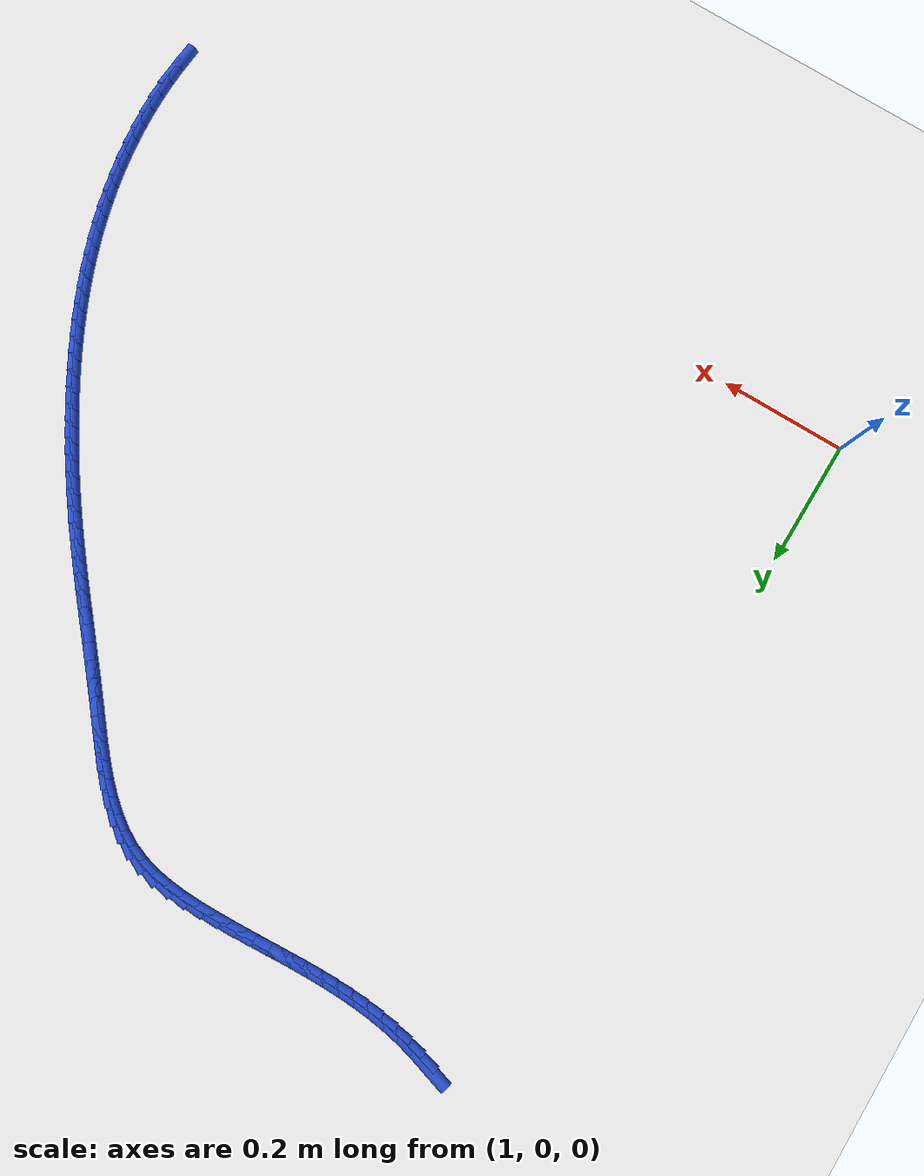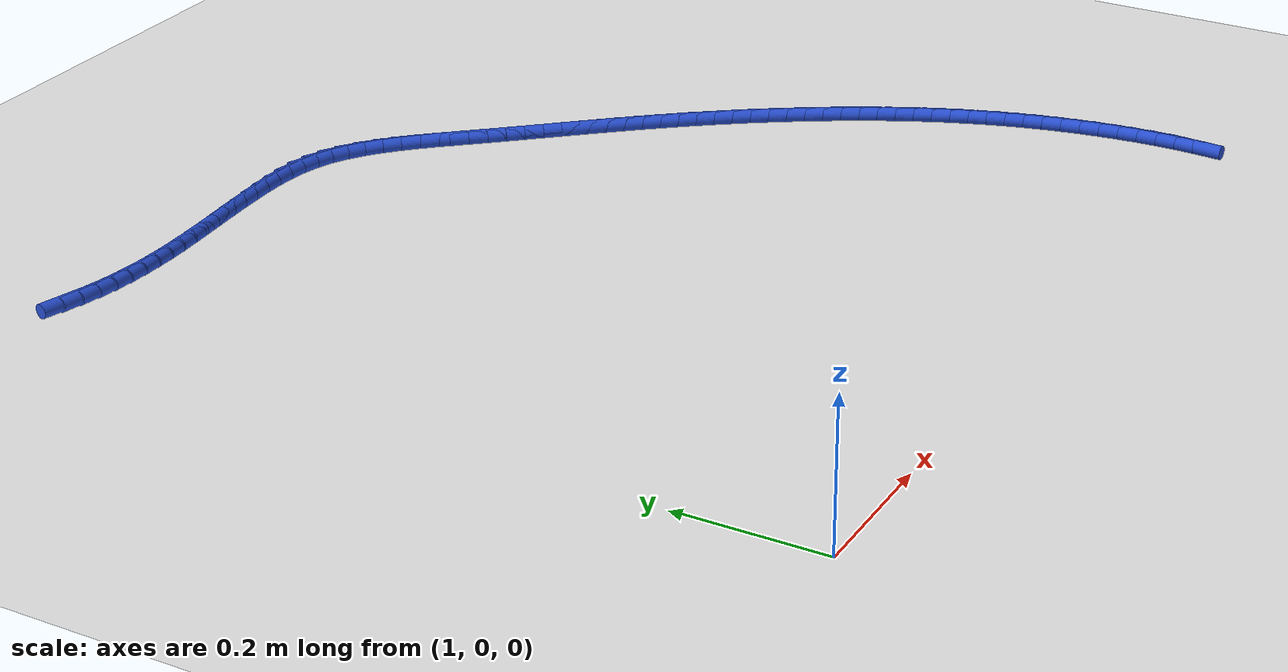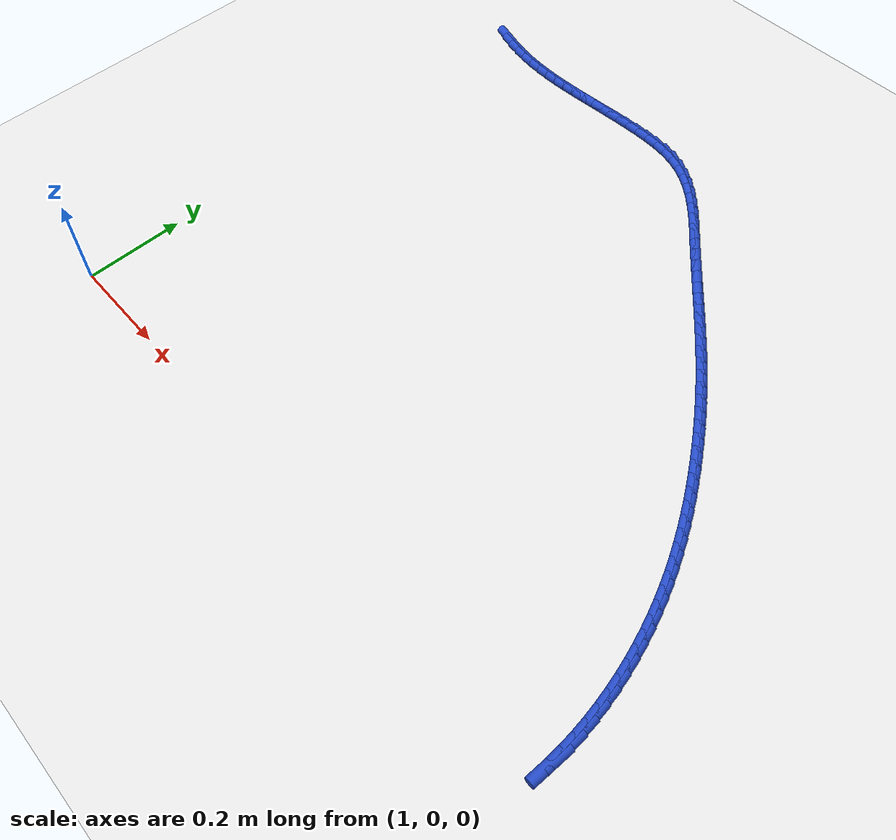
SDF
<sdf version="1.6">
 <world name="default">
  <model name="ground_plane">
   <static>1</static>
   <link name="link">
    <collision name="collision">
     <geometry><plane><normal>0 0 1</normal><size>100 100</size></plane></geometry>
     <surface><friction><ode><mu>100</mu><mu2>50</mu2></ode></friction></surface>
    </collision>
    <visual name="visual">
     <cast_shadows>0</cast_shadows>
     <geometry><plane><normal>0 0 1</normal><size>100 100</size></plane></geometry>
     <material>
      <script><uri>file://media/materials/scripts/gazebo.material</uri><name>Gazebo/WhiteGlow</name></script>
     </material>
    </visual>
   </link>
  </model>
  <model name="line">
   <link name="link_68">
    <pose>1.0656041045142013 1.0889953393041476 0.01 0 1.57 -0.27916170906098564</pose>
    <collision name="collision">
     <geometry><cylinder><radius>0.01</radius><length>0.08</length></cylinder></geometry>
    </collision>
    <visual name="visual">
     <material>
      <script><name>Gazebo/Blue</name><uri>file://media/materials/scripts/gazebo.material</uri></script>
     </material>
     <geometry><cylinder><radius>0.01</radius><length>0.08</length></cylinder></geometry>
    </visual>
   </link>
   <link name="link_69">
    <pose>1.0919527257164268 1.0814425877384994 0.01 0 1.57 -0.2186142378126211</pose>
    <collision name="collision">
     <geometry><cylinder><radius>0.01</radius><length>0.08</length></cylinder></geometry>
    </collision>
    <visual name="visual">
     <material>
      <script><name>Gazebo/Blue</name><uri>file://media/materials/scripts/gazebo.material</uri></script>
     </material>
     <geometry><cylinder><radius>0.01</radius><length>0.08</length></cylinder></geometry>
    </visual>
   </link>
   <link name="link_70">
    <pose>1.118190770663231 1.075613417383474 0.01 0 1.57 -0.16219459571899836</pose>
    <collision name="collision">
     <geometry><cylinder><radius>0.01</radius><length>0.08</length></cylinder></geometry>
    </collision>
    <visual name="visual">
     <material>
      <script><name>Gazebo/Blue</name><uri>file://media/materials/scripts/gazebo.material</uri></script>
     </material>
     <geometry><cylinder><radius>0.01</radius><length>0.08</length></cylinder></geometry>
    </visual>
   </link>
   <link name="link_71">
    <pose>1.1443421990329217 1.0713342065316445 0.01 0 1.57 -0.11081324031563565</pose>
    <collision name="collision">
     <geometry><cylinder><radius>0.01</radius><length>0.08</length></cylinder></geometry>
    </collision>
    <visual name="visual">
     <material>
      <script><name>Gazebo/Blue</name><uri>file://media/materials/scripts/gazebo.material</uri></script>
     </material>
     <geometry><cylinder><radius>0.01</radius><length>0.08</length></cylinder></geometry>
    </visual>
   </link>
   <link name="link_72">
    <pose>1.1704309705038032 1.0684313334755833 0.01 0 1.57 -0.06517252712021358</pose>
    <collision name="collision">
     <geometry><cylinder><radius>0.01</radius><length>0.08</length></cylinder></geometry>
    </collision>
    <visual name="visual">
     <material>
      <script><name>Gazebo/Blue</name><uri>file://media/materials/scripts/gazebo.material</uri></script>
     </material>
     <geometry><cylinder><radius>0.01</radius><length>0.08</length></cylinder></geometry>
    </visual>
   </link>
   <link name="link_73">
    <pose>1.1964810447541816 1.0667311765078633 0.01 0 1.57 -0.025769362839261636</pose>
    <collision name="collision">
     <geometry><cylinder><radius>0.01</radius><length>0.08</length></cylinder></geometry>
    </collision>
    <visual name="visual">
     <material>
      <script><name>Gazebo/Blue</name><uri>file://media/materials/scripts/gazebo.material</uri></script>
     </material>
     <geometry><cylinder><radius>0.01</radius><length>0.08</length></cylinder></geometry>
    </visual>
   </link>
   <link name="link_74">
    <pose>1.2225163814623616 1.0660601139210573 0.01 0 1.57 0.007080442641253311</pose>
    <collision name="collision">
     <geometry><cylinder><radius>0.01</radius><length>0.08</length></cylinder></geometry>
    </collision>
    <visual name="visual">
     <material>
      <script><name>Gazebo/Blue</name><uri>file://media/materials/scripts/gazebo.material</uri></script>
     </material>
     <geometry><cylinder><radius>0.01</radius><length>0.08</length></cylinder></geometry>
    </visual>
   </link>
   <link name="link_75">
    <pose>1.2485609403066493 1.0662445240077378 0.01 0 1.57 0.03320619857169139</pose>
    <collision name="collision">
     <geometry><cylinder><radius>0.01</radius><length>0.08</length></cylinder></geometry>
    </collision>
    <visual name="visual">
     <material>
      <script><name>Gazebo/Blue</name><uri>file://media/materials/scripts/gazebo.material</uri></script>
     </material>
     <geometry><cylinder><radius>0.01</radius><length>0.08</length></cylinder></geometry>
    </visual>
   </link>
   <link name="link_76">
    <pose>1.2746386809653507 1.0671107850604782 0.01 0 1.57 0.052543767030557346</pose>
    <collision name="collision">
     <geometry><cylinder><radius>0.01</radius><length>0.08</length></cylinder></geometry>
    </collision>
    <visual name="visual">
     <material>
      <script><name>Gazebo/Blue</name><uri>file://media/materials/scripts/gazebo.material</uri></script>
     </material>
     <geometry><cylinder><radius>0.01</radius><length>0.08</length></cylinder></geometry>
    </visual>
   </link>
   <link name="link_77">
    <pose>1.3007735631167707 1.0684852753718501 0.01 0 1.57 0.06510084725809813</pose>
    <collision name="collision">
     <geometry><cylinder><radius>0.01</radius><length>0.08</length></cylinder></geometry>
    </collision>
    <visual name="visual">
     <material>
      <script><name>Gazebo/Blue</name><uri>file://media/materials/scripts/gazebo.material</uri></script>
     </material>
     <geometry><cylinder><radius>0.01</radius><length>0.08</length></cylinder></geometry>
    </visual>
   </link>
   <link name="link_78">
    <pose>1.3269895464392156 1.0701943732344272 0.01 0 1.57 0.07092980385981996</pose>
    <collision name="collision">
     <geometry><cylinder><radius>0.01</radius><length>0.08</length></cylinder></geometry>
    </collision>
    <visual name="visual">
     <material>
      <script><name>Gazebo/Blue</name><uri>file://media/materials/scripts/gazebo.material</uri></script>
     </material>
     <geometry><cylinder><radius>0.01</radius><length>0.08</length></cylinder></geometry>
    </visual>
   </link>
   <link name="link_79">
    <pose>1.3533105906109901 1.0720644569407818 0.01 0 1.57 0.07010960187567772</pose>
    <collision name="collision">
     <geometry><cylinder><radius>0.01</radius><length>0.08</length></cylinder></geometry>
    </collision>
    <visual name="visual">
     <material>
      <script><name>Gazebo/Blue</name><uri>file://media/materials/scripts/gazebo.material</uri></script>
     </material>
     <geometry><cylinder><radius>0.01</radius><length>0.08</length></cylinder></geometry>
    </visual>
   </link>
   <link name="link_80">
    <pose>1.3797606553104003 1.0739219047834867 0.01 0 1.57 0.06273707140460581</pose>
    <collision name="collision">
     <geometry><cylinder><radius>0.01</radius><length>0.08</length></cylinder></geometry>
    </collision>
    <visual name="visual">
     <material>
      <script><name>Gazebo/Blue</name><uri>file://media/materials/scripts/gazebo.material</uri></script>
     </material>
     <geometry><cylinder><radius>0.01</radius><length>0.08</length></cylinder></geometry>
    </visual>
   </link>
   <link name="link_81">
    <pose>1.4063637002157516 1.0755930950551147 0.01 0 1.57 0.048927005559017384</pose>
    <collision name="collision">
     <geometry><cylinder><radius>0.01</radius><length>0.08</length></cylinder></geometry>
    </collision>
    <visual name="visual">
     <material>
      <script><name>Gazebo/Blue</name><uri>file://media/materials/scripts/gazebo.material</uri></script>
     </material>
     <geometry><cylinder><radius>0.01</radius><length>0.08</length></cylinder></geometry>
    </visual>
   </link>
   <link name="link_82">
    <pose>1.43314368500535 1.0769044060482384 0.01 0 1.57 0.02834512097936718</pose>
    <collision name="collision">
     <geometry><cylinder><radius>0.01</radius><length>0.08</length></cylinder></geometry>
    </collision>
    <visual name="visual">
     <material>
      <script><name>Gazebo/Blue</name><uri>file://media/materials/scripts/gazebo.material</uri></script>
     </material>
     <geometry><cylinder><radius>0.01</radius><length>0.08</length></cylinder></geometry>
    </visual>
   </link>
   <link name="link_83">
    <pose>1.4601112707788408 1.077669010313195 0.01 0 1.57 -0.005867992903768201</pose>
    <collision name="collision">
     <geometry><cylinder><radius>0.01</radius><length>0.08</length></cylinder></geometry>
    </collision>
    <visual name="visual">
     <material>
      <script><name>Gazebo/Blue</name><uri>file://media/materials/scripts/gazebo.material</uri></script>
     </material>
     <geometry><cylinder><radius>0.01</radius><length>0.08</length></cylinder></geometry>
    </visual>
   </link>
   <link name="link_84">
    <pose>1.4870864255003169 1.0775107184798682 0.01 0 1.57 -0.059907476616134096</pose>
    <collision name="collision">
     <geometry><cylinder><radius>0.01</radius><length>0.08</length></cylinder></geometry>
    </collision>
    <visual name="visual">
     <material>
      <script><name>Gazebo/Blue</name><uri>file://media/materials/scripts/gazebo.material</uri></script>
     </material>
     <geometry><cylinder><radius>0.01</radius><length>0.08</length></cylinder></geometry>
    </visual>
   </link>
   <link name="link_85">
    <pose>1.5137464502753986 1.0759116702667766 0.01 0 1.57 -0.13602075303087</pose>
    <collision name="collision">
     <geometry><cylinder><radius>0.01</radius><length>0.08</length></cylinder></geometry>
    </collision>
    <visual name="visual">
     <material>
      <script><name>Gazebo/Blue</name><uri>file://media/materials/scripts/gazebo.material</uri></script>
     </material>
     <geometry><cylinder><radius>0.01</radius><length>0.08</length></cylinder></geometry>
    </visual>
   </link>
   <link name="link_86">
    <pose>1.5397652070972228 1.072350590288152 0.01 0 1.57 -0.23675481027744577</pose>
    <collision name="collision">
     <geometry><cylinder><radius>0.01</radius><length>0.08</length></cylinder></geometry>
    </collision>
    <visual name="visual">
     <material>
      <script><name>Gazebo/Blue</name><uri>file://media/materials/scripts/gazebo.material</uri></script>
     </material>
     <geometry><cylinder><radius>0.01</radius><length>0.08</length></cylinder></geometry>
    </visual>
   </link>
   <link name="link_87">
    <pose>1.5648165579589266 1.0663062031582267 0.01 0 1.57 -0.3620739148701156</pose>
    <collision name="collision">
     <geometry><cylinder><radius>0.01</radius><length>0.08</length></cylinder></geometry>
    </collision>
    <visual name="visual">
     <material>
      <script><name>Gazebo/Blue</name><uri>file://media/materials/scripts/gazebo.material</uri></script>
     </material>
     <geometry><cylinder><radius>0.01</radius><length>0.08</length></cylinder></geometry>
    </visual>
   </link>
   <link name="link_88">
    <pose>1.5885961063776939 1.0572991653416326 0.01 0 1.57 -0.487780107797958</pose>
    <collision name="collision">
     <geometry><cylinder><radius>0.01</radius><length>0.08</length></cylinder></geometry>
    </collision>
    <visual name="visual">
     <material>
      <script><name>Gazebo/Blue</name><uri>file://media/materials/scripts/gazebo.material</uri></script>
     </material>
     <geometry><cylinder><radius>0.01</radius><length>0.08</length></cylinder></geometry>
    </visual>
   </link>
   <link name="link_89">
    <pose>1.6110716044164275 1.045375013347328 0.01 0 1.57 -0.595179640172855</pose>
    <collision name="collision">
     <geometry><cylinder><radius>0.01</radius><length>0.08</length></cylinder></geometry>
    </collision>
    <visual name="visual">
     <material>
      <script><name>Gazebo/Blue</name><uri>file://media/materials/scripts/gazebo.material</uri></script>
     </material>
     <geometry><cylinder><radius>0.01</radius><length>0.08</length></cylinder></geometry>
    </visual>
   </link>
   <link name="link_90">
    <pose>1.632396059246046 1.0309365764599836 0.01 0 1.57 -0.6830550004790298</pose>
    <collision name="collision">
     <geometry><cylinder><radius>0.01</radius><length>0.08</length></cylinder></geometry>
    </collision>
    <visual name="visual">
     <material>
      <script><name>Gazebo/Blue</name><uri>file://media/materials/scripts/gazebo.material</uri></script>
     </material>
     <geometry><cylinder><radius>0.01</radius><length>0.08</length></cylinder></geometry>
    </visual>
   </link>
   <link name="link_91">
    <pose>1.6527260309350353 1.0143935362699787 0.01 0 1.57 -0.7521719552036733</pose>
    <collision name="collision">
     <geometry><cylinder><radius>0.01</radius><length>0.08</length></cylinder></geometry>
    </collision>
    <visual name="visual">
     <material>
      <script><name>Gazebo/Blue</name><uri>file://media/materials/scripts/gazebo.material</uri></script>
     </material>
     <geometry><cylinder><radius>0.01</radius><length>0.08</length></cylinder></geometry>
    </visual>
   </link>
   <link name="link_92">
    <pose>1.6722180795518828 0.9961555743676935 0.01 0 1.57 -0.8039831392063012</pose>
    <collision name="collision">
     <geometry><cylinder><radius>0.01</radius><length>0.08</length></cylinder></geometry>
    </collision>
    <visual name="visual">
     <material>
      <script><name>Gazebo/Blue</name><uri>file://media/materials/scripts/gazebo.material</uri></script>
     </material>
     <geometry><cylinder><radius>0.01</radius><length>0.08</length></cylinder></geometry>
    </visual>
   </link>
   <link name="link_93">
    <pose>1.691028765165075 0.976632372343508 0.01 0 1.57 -0.8399619504742416</pose>
    <collision name="collision">
     <geometry><cylinder><radius>0.01</radius><length>0.08</length></cylinder></geometry>
    </collision>
    <visual name="visual">
     <material>
      <script><name>Gazebo/Blue</name><uri>file://media/materials/scripts/gazebo.material</uri></script>
     </material>
     <geometry><cylinder><radius>0.01</radius><length>0.08</length></cylinder></geometry>
    </visual>
   </link>
   <link name="link_94">
    <pose>1.7093146478430994 0.9562336117878025 0.01 0 1.57 -0.8612406682924948</pose>
    <collision name="collision">
     <geometry><cylinder><radius>0.01</radius><length>0.08</length></cylinder></geometry>
    </collision>
    <visual name="visual">
     <material>
      <script><name>Gazebo/Blue</name><uri>file://media/materials/scripts/gazebo.material</uri></script>
     </material>
     <geometry><cylinder><radius>0.01</radius><length>0.08</length></cylinder></geometry>
    </visual>
   </link>
   <link name="link_95">
    <pose>1.7272322876544417 0.9353689742909566 0.01 0 1.57 -0.8684359539176296</pose>
    <collision name="collision">
     <geometry><cylinder><radius>0.01</radius><length>0.08</length></cylinder></geometry>
    </collision>
    <visual name="visual">
     <material>
      <script><name>Gazebo/Blue</name><uri>file://media/materials/scripts/gazebo.material</uri></script>
     </material>
     <geometry><cylinder><radius>0.01</radius><length>0.08</length></cylinder></geometry>
    </visual>
   </link>
   <link name="link_96">
    <pose>1.74493824466759 0.9144481414433506 0.01 0 1.57 -0.8638776592101121</pose>
    <collision name="collision">
     <geometry><cylinder><radius>0.01</radius><length>0.08</length></cylinder></geometry>
    </collision>
    <visual name="visual">
     <material>
      <script><name>Gazebo/Blue</name><uri>file://media/materials/scripts/gazebo.material</uri></script>
     </material>
     <geometry><cylinder><radius>0.01</radius><length>0.08</length></cylinder></geometry>
    </visual>
   </link>
   <link name="link_97">
    <pose>1.7625643150409511 0.8938131851781375 0.01 0 1.57 -0.858068594007972</pose>
    <collision name="collision">
     <geometry><cylinder><radius>0.01</radius><length>0.08</length></cylinder></geometry>
    </collision>
    <visual name="visual">
     <material>
      <script><name>Gazebo/Blue</name><uri>file://media/materials/scripts/gazebo.material</uri></script>
     </material>
     <geometry><cylinder><radius>0.01</radius><length>0.08</length></cylinder></geometry>
    </visual>
   </link>
   <link name="link_98">
    <pose>1.7801273219243452 0.8734922816956876 0.01 0 1.57 -0.8541594606338152</pose>
    <collision name="collision">
     <geometry><cylinder><radius>0.01</radius><length>0.08</length></cylinder></geometry>
    </collision>
    <visual name="visual">
     <material>
      <script><name>Gazebo/Blue</name><uri>file://media/materials/scripts/gazebo.material</uri></script>
     </material>
     <geometry><cylinder><radius>0.01</radius><length>0.08</length></cylinder></geometry>
    </visual>
   </link>
   <link name="link_99">
    <pose>1.7976107464860722 0.8534225779552437 0.01 0 1.57 -0.8522192367625064</pose>
    <collision name="collision">
     <geometry><cylinder><radius>0.01</radius><length>0.08</length></cylinder></geometry>
    </collision>
    <visual name="visual">
     <material>
      <script><name>Gazebo/Blue</name><uri>file://media/materials/scripts/gazebo.material</uri></script>
     </material>
     <geometry><cylinder><radius>0.01</radius><length>0.08</length></cylinder></geometry>
    </visual>
   </link>
   <link name="link_100">
    <pose>1.8149980663741234 0.8335412113050119 0.01 0 1.57 -0.8523022148470709</pose>
    <collision name="collision">
     <geometry><cylinder><radius>0.01</radius><length>0.08</length></cylinder></geometry>
    </collision>
    <visual name="visual">
     <material>
      <script><name>Gazebo/Blue</name><uri>file://media/materials/scripts/gazebo.material</uri></script>
     </material>
     <geometry><cylinder><radius>0.01</radius><length>0.08</length></cylinder></geometry>
    </visual>
   </link>
   <link name="link_101">
    <pose>1.83227275923649 0.8137853190931983 0.01 0 1.57 -0.8544472363930543</pose>
    <collision name="collision">
     <geometry><cylinder><radius>0.01</radius><length>0.08</length></cylinder></geometry>
    </collision>
    <visual name="visual">
     <material>
      <script><name>Gazebo/Blue</name><uri>file://media/materials/scripts/gazebo.material</uri></script>
     </material>
     <geometry><cylinder><radius>0.01</radius><length>0.08</length></cylinder></geometry>
    </visual>
   </link>
   <link name="link_102">
    <pose>1.8494183027211624 0.7940920386680084 0.01 0 1.57 -0.8586766323761936</pose>
    <collision name="collision">
     <geometry><cylinder><radius>0.01</radius><length>0.08</length></cylinder></geometry>
    </collision>
    <visual name="visual">
     <material>
      <script><name>Gazebo/Blue</name><uri>file://media/materials/scripts/gazebo.material</uri></script>
     </material>
     <geometry><cylinder><radius>0.01</radius><length>0.08</length></cylinder></geometry>
    </visual>
   </link>
   <link name="link_103">
    <pose>1.8664181744761328 0.7743985073776483 0.01 0 1.57 -0.8649952094569441</pose>
    <collision name="collision">
     <geometry><cylinder><radius>0.01</radius><length>0.08</length></cylinder></geometry>
    </collision>
    <visual name="visual">
     <material>
      <script><name>Gazebo/Blue</name><uri>file://media/materials/scripts/gazebo.material</uri></script>
     </material>
     <geometry><cylinder><radius>0.01</radius><length>0.08</length></cylinder></geometry>
    </visual>
   </link>
   <link name="link_104">
    <pose>1.883255852149392 0.7546418625703236 0.01 0 1.57 -0.8733893115027711</pose>
    <collision name="collision">
     <geometry><cylinder><radius>0.01</radius><length>0.08</length></cylinder></geometry>
    </collision>
    <visual name="visual">
     <material>
      <script><name>Gazebo/Blue</name><uri>file://media/materials/scripts/gazebo.material</uri></script>
     </material>
     <geometry><cylinder><radius>0.01</radius><length>0.08</length></cylinder></geometry>
    </visual>
   </link>
   <link name="link_105">
    <pose>1.899914813388931 0.7347592415942408 0.01 0 1.57 -0.8838260062252832</pose>
    <collision name="collision">
     <geometry><cylinder><radius>0.01</radius><length>0.08</length></cylinder></geometry>
    </collision>
    <visual name="visual">
     <material>
      <script><name>Gazebo/Blue</name><uri>file://media/materials/scripts/gazebo.material</uri></script>
     </material>
     <geometry><cylinder><radius>0.01</radius><length>0.08</length></cylinder></geometry>
    </visual>
   </link>
   <link name="link_106">
    <pose>1.9163785358427403 0.7146877817976054 0.01 0 1.57 -0.8962524664071034</pose>
    <collision name="collision">
     <geometry><cylinder><radius>0.01</radius><length>0.08</length></cylinder></geometry>
    </collision>
    <visual name="visual">
     <material>
      <script><name>Gazebo/Blue</name><uri>file://media/materials/scripts/gazebo.material</uri></script>
     </material>
     <geometry><cylinder><radius>0.01</radius><length>0.08</length></cylinder></geometry>
    </visual>
   </link>
   <link name="link_107">
    <pose>1.9326304971588126 0.6943646205286237 0.01 0 1.57 -0.9104728109646687</pose>
    <collision name="collision">
     <geometry><cylinder><radius>0.01</radius><length>0.08</length></cylinder></geometry>
    </collision>
    <visual name="visual">
     <material>
      <script><name>Gazebo/Blue</name><uri>file://media/materials/scripts/gazebo.material</uri></script>
     </material>
     <geometry><cylinder><radius>0.01</radius><length>0.08</length></cylinder></geometry>
    </visual>
   </link>
   <link name="link_108">
    <pose>1.9486534800227886 0.6737330218057764 0.01 0 1.57 -0.9254276896070175</pose>
    <collision name="collision">
     <geometry><cylinder><radius>0.01</radius><length>0.08</length></cylinder></geometry>
    </collision>
    <visual name="visual">
     <material>
      <script><name>Gazebo/Blue</name><uri>file://media/materials/scripts/gazebo.material</uri></script>
     </material>
     <geometry><cylinder><radius>0.01</radius><length>0.08</length></cylinder></geometry>
    </visual>
   </link>
   <link name="link_109">
    <pose>1.9644245649255163 0.6527865192303218 0.01 0 1.57 -0.9406512585526138</pose>
    <collision name="collision">
     <geometry><cylinder><radius>0.01</radius><length>0.08</length></cylinder></geometry>
    </collision>
    <visual name="visual">
     <material>
      <script><name>Gazebo/Blue</name><uri>file://media/materials/scripts/gazebo.material</uri></script>
     </material>
     <geometry><cylinder><radius>0.01</radius><length>0.08</length></cylinder></geometry>
    </visual>
   </link>
   <link name="link_110">
    <pose>1.9799180370219804 0.6315432896106701 0.01 0 1.57 -0.9561829899145762</pose>
    <collision name="collision">
     <geometry><cylinder><radius>0.01</radius><length>0.08</length></cylinder></geometry>
    </collision>
    <visual name="visual">
     <material>
      <script><name>Gazebo/Blue</name><uri>file://media/materials/scripts/gazebo.material</uri></script>
     </material>
     <geometry><cylinder><radius>0.01</radius><length>0.08</length></cylinder></geometry>
    </visual>
   </link>
   <link name="link_111">
    <pose>1.9951081622502707 0.6100216791681211 0.01 0 1.57 -0.9720665157757412</pose>
    <collision name="collision">
     <geometry><cylinder><radius>0.01</radius><length>0.08</length></cylinder></geometry>
    </collision>
    <visual name="visual">
     <material>
      <script><name>Gazebo/Blue</name><uri>file://media/materials/scripts/gazebo.material</uri></script>
     </material>
     <geometry><cylinder><radius>0.01</radius><length>0.08</length></cylinder></geometry>
    </visual>
   </link>
   <link name="link_112">
    <pose>2.0099692065484773 0.5882400341239759 0.01 0 1.57 -0.9883465193143695</pose>
    <collision name="collision">
     <geometry><cylinder><radius>0.01</radius><length>0.08</length></cylinder></geometry>
    </collision>
    <visual name="visual">
     <material>
      <script><name>Gazebo/Blue</name><uri>file://media/materials/scripts/gazebo.material</uri></script>
     </material>
     <geometry><cylinder><radius>0.01</radius><length>0.08</length></cylinder></geometry>
    </visual>
   </link>
   <link name="link_113">
    <pose>2.0244754358546904 0.5662167006995344 0.01 0 1.57 -1.00506900977557</pose>
    <collision name="collision">
     <geometry><cylinder><radius>0.01</radius><length>0.08</length></cylinder></geometry>
    </collision>
    <visual name="visual">
     <material>
      <script><name>Gazebo/Blue</name><uri>file://media/materials/scripts/gazebo.material</uri></script>
     </material>
     <geometry><cylinder><radius>0.01</radius><length>0.08</length></cylinder></geometry>
    </visual>
   </link>
   <link name="link_114">
    <pose>2.038601116106999 0.5439700251160967 0.01 0 1.57 -1.022281585190023</pose>
    <collision name="collision">
     <geometry><cylinder><radius>0.01</radius><length>0.08</length></cylinder></geometry>
    </collision>
    <visual name="visual">
     <material>
      <script><name>Gazebo/Blue</name><uri>file://media/materials/scripts/gazebo.material</uri></script>
     </material>
     <geometry><cylinder><radius>0.01</radius><length>0.08</length></cylinder></geometry>
    </visual>
   </link>
   <link name="link_115">
    <pose>2.052320513243494 0.521518353594963 0.01 0 1.57 -1.040109132081262</pose>
    <collision name="collision">
     <geometry><cylinder><radius>0.01</radius><length>0.08</length></cylinder></geometry>
    </collision>
    <visual name="visual">
     <material>
      <script><name>Gazebo/Blue</name><uri>file://media/materials/scripts/gazebo.material</uri></script>
     </material>
     <geometry><cylinder><radius>0.01</radius><length>0.08</length></cylinder></geometry>
    </visual>
   </link>
   <link name="link_116">
    <pose>2.0656077123723238 0.4988764273789058 0.01 0 1.57 -1.059115691382272</pose>
    <collision name="collision">
     <geometry><cylinder><radius>0.01</radius><length>0.08</length></cylinder></geometry>
    </collision>
    <visual name="visual">
     <material>
      <script><name>Gazebo/Blue</name><uri>file://media/materials/scripts/gazebo.material</uri></script>
     </material>
     <geometry><cylinder><radius>0.01</radius><length>0.08</length></cylinder></geometry>
    </visual>
   </link>
   <link name="link_117">
    <pose>2.078435522784367 0.47603355335022157 0.01 0 1.57 -1.079520012560534</pose>
    <collision name="collision">
     <geometry><cylinder><radius>0.01</radius><length>0.08</length></cylinder></geometry>
    </collision>
    <visual name="visual">
     <material>
      <script><name>Gazebo/Blue</name><uri>file://media/materials/scripts/gazebo.material</uri></script>
     </material>
     <geometry><cylinder><radius>0.01</radius><length>0.08</length></cylinder></geometry>
    </visual>
   </link>
   <link name="link_118">
    <pose>2.0907762048370544 0.45296809499713175 0.01 0 1.57 -1.1012988300860431</pose>
    <collision name="collision">
     <geometry><cylinder><radius>0.01</radius><length>0.08</length></cylinder></geometry>
    </collision>
    <visual name="visual">
     <material>
      <script><name>Gazebo/Blue</name><uri>file://media/materials/scripts/gazebo.material</uri></script>
     </material>
     <geometry><cylinder><radius>0.01</radius><length>0.08</length></cylinder></geometry>
    </visual>
   </link>
   <link name="link_119">
    <pose>2.1026020167529023 0.42965837324679795 0.01 0 1.57 -1.1244187104456702</pose>
    <collision name="collision">
     <geometry><cylinder><radius>0.01</radius><length>0.08</length></cylinder></geometry>
    </collision>
    <visual name="visual">
     <material>
      <script><name>Gazebo/Blue</name><uri>file://media/materials/scripts/gazebo.material</uri></script>
     </material>
     <geometry><cylinder><radius>0.01</radius><length>0.08</length></cylinder></geometry>
    </visual>
   </link>
   <link name="link_120">
    <pose>2.1138852167544266 0.4060827090263815 0.01 0 1.57 -1.1488360074616548</pose>
    <collision name="collision">
     <geometry><cylinder><radius>0.01</radius><length>0.08</length></cylinder></geometry>
    </collision>
    <visual name="visual">
     <material>
      <script><name>Gazebo/Blue</name><uri>file://media/materials/scripts/gazebo.material</uri></script>
     </material>
     <geometry><cylinder><radius>0.01</radius><length>0.08</length></cylinder></geometry>
    </visual>
   </link>
   <link name="link_121">
    <pose>2.1245980630641466 0.38221942326304403 0.01 0 1.57 -1.174496075549911</pose>
    <collision name="collision">
     <geometry><cylinder><radius>0.01</radius><length>0.08</length></cylinder></geometry>
    </collision>
    <visual name="visual">
     <material>
      <script><name>Gazebo/Blue</name><uri>file://media/materials/scripts/gazebo.material</uri></script>
     </material>
     <geometry><cylinder><radius>0.01</radius><length>0.08</length></cylinder></geometry>
    </visual>
   </link>
   <link name="link_122">
    <pose>2.1347128139045792 0.3580468368839469 0.01 0 1.57 -1.2013326960091248</pose>
    <collision name="collision">
     <geometry><cylinder><radius>0.01</radius><length>0.08</length></cylinder></geometry>
    </collision>
    <visual name="visual">
     <material>
      <script><name>Gazebo/Blue</name><uri>file://media/materials/scripts/gazebo.material</uri></script>
     </material>
     <geometry><cylinder><radius>0.01</radius><length>0.08</length></cylinder></geometry>
    </visual>
   </link>
   <link name="link_123">
    <pose>2.1442017274982406 0.333543270816252 0.01 0 1.57 -1.2292677811715305</pose>
    <collision name="collision">
     <geometry><cylinder><radius>0.01</radius><length>0.08</length></cylinder></geometry>
    </collision>
    <visual name="visual">
     <material>
      <script><name>Gazebo/Blue</name><uri>file://media/materials/scripts/gazebo.material</uri></script>
     </material>
     <geometry><cylinder><radius>0.01</radius><length>0.08</length></cylinder></geometry>
    </visual>
   </link>
   <link name="link_124">
    <pose>2.1530370620676487 0.30868704598712016 0.01 0 1.57 -1.2582114162326536</pose>
    <collision name="collision">
     <geometry><cylinder><radius>0.01</radius><length>0.08</length></cylinder></geometry>
    </collision>
    <visual name="visual">
     <material>
      <script><name>Gazebo/Blue</name><uri>file://media/materials/scripts/gazebo.material</uri></script>
     </material>
     <geometry><cylinder><radius>0.01</radius><length>0.08</length></cylinder></geometry>
    </visual>
   </link>
   <link name="link_125">
    <pose>2.161191075835321 0.2834564833237133 0.01 0 1.57 -1.2880622872613867</pose>
    <collision name="collision">
     <geometry><cylinder><radius>0.01</radius><length>0.08</length></cylinder></geometry>
    </collision>
    <visual name="visual">
     <material>
      <script><name>Gazebo/Blue</name><uri>file://media/materials/scripts/gazebo.material</uri></script>
     </material>
     <geometry><cylinder><radius>0.01</radius><length>0.08</length></cylinder></geometry>
    </visual>
   </link>
   <link name="link_126">
    <pose>2.1686360270237754 0.25782990375319287 0.01 0 1.57 -1.3187085260416993</pose>
    <collision name="collision">
     <geometry><cylinder><radius>0.01</radius><length>0.08</length></cylinder></geometry>
    </collision>
    <visual name="visual">
     <material>
      <script><name>Gazebo/Blue</name><uri>file://media/materials/scripts/gazebo.material</uri></script>
     </material>
     <geometry><cylinder><radius>0.01</radius><length>0.08</length></cylinder></geometry>
    </visual>
   </link>
   <link name="link_127">
    <pose>2.175344173855528 0.23178562820272033 0.01 0 1.57 -1.3500289786606372</pose>
    <collision name="collision">
     <geometry><cylinder><radius>0.01</radius><length>0.08</length></cylinder></geometry>
    </collision>
    <visual name="visual">
     <material>
      <script><name>Gazebo/Blue</name><uri>file://media/materials/scripts/gazebo.material</uri></script>
     </material>
     <geometry><cylinder><radius>0.01</radius><length>0.08</length></cylinder></geometry>
    </visual>
   </link>
   <link name="link_128">
    <pose>2.181287774553097 0.20530197759945715 0.01 0 1.57 -1.381913199032431</pose>
    <collision name="collision">
     <geometry><cylinder><radius>0.01</radius><length>0.08</length></cylinder></geometry>
    </collision>
    <visual name="visual">
     <material>
      <script><name>Gazebo/Blue</name><uri>file://media/materials/scripts/gazebo.material</uri></script>
     </material>
     <geometry><cylinder><radius>0.01</radius><length>0.08</length></cylinder></geometry>
    </visual>
   </link>
   <link name="link_129">
    <pose>2.186437072333533 0.1783651367562862 0.01 0 1.57 -1.414512408002659</pose>
    <collision name="collision">
     <geometry><cylinder><radius>0.01</radius><length>0.08</length></cylinder></geometry>
    </collision>
    <visual name="visual">
     <material>
      <script><name>Gazebo/Blue</name><uri>file://media/materials/scripts/gazebo.material</uri></script>
     </material>
     <geometry><cylinder><radius>0.01</radius><length>0.08</length></cylinder></geometry>
    </visual>
   </link>
   <link name="link_130">
    <pose>2.190743495147168 0.15103472011689198 0.01 0 1.57 -1.448164147502335</pose>
    <collision name="collision">
     <geometry><cylinder><radius>0.01</radius><length>0.08</length></cylinder></geometry>
    </collision>
    <visual name="visual">
     <material>
      <script><name>Gazebo/Blue</name><uri>file://media/materials/scripts/gazebo.material</uri></script>
     </material>
     <geometry><cylinder><radius>0.01</radius><length>0.08</length></cylinder></geometry>
    </visual>
   </link>
   <link name="link_131">
    <pose>2.194148213639454 0.1234103729212755 0.01 0 1.57 -1.483162363850097</pose>
    <collision name="collision">
     <geometry><cylinder><radius>0.01</radius><length>0.08</length></cylinder></geometry>
    </collision>
    <visual name="visual">
     <material>
      <script><name>Gazebo/Blue</name><uri>file://media/materials/scripts/gazebo.material</uri></script>
     </material>
     <geometry><cylinder><radius>0.01</radius><length>0.08</length></cylinder></geometry>
    </visual>
   </link>
   <link name="link_132">
    <pose>2.196592295131971 0.0955921436476299 0.01 0 1.57 -1.5198048623396452</pose>
    <collision name="collision">
     <geometry><cylinder><radius>0.01</radius><length>0.08</length></cylinder></geometry>
    </collision>
    <visual name="visual">
     <material>
      <script><name>Gazebo/Blue</name><uri>file://media/materials/scripts/gazebo.material</uri></script>
     </material>
     <geometry><cylinder><radius>0.01</radius><length>0.08</length></cylinder></geometry>
    </visual>
   </link>
   <link name="link_133">
    <pose>2.198016806946297 0.06768008077414822 0.01 0 1.57 -1.5583977884084486</pose>
    <collision name="collision">
     <geometry><cylinder><radius>0.01</radius><length>0.08</length></cylinder></geometry>
    </collision>
    <visual name="visual">
     <material>
      <script><name>Gazebo/Blue</name><uri>file://media/materials/scripts/gazebo.material</uri></script>
     </material>
     <geometry><cylinder><radius>0.01</radius><length>0.08</length></cylinder></geometry>
    </visual>
   </link>
   <link name="link_134">
    <pose>2.19836281640401 0.039774232779023894 0.01 0 1.57 1.5423350429529057</pose>
    <collision name="collision">
     <geometry><cylinder><radius>0.01</radius><length>0.08</length></cylinder></geometry>
    </collision>
    <visual name="visual">
     <material>
      <script><name>Gazebo/Blue</name><uri>file://media/materials/scripts/gazebo.material</uri></script>
     </material>
     <geometry><cylinder><radius>0.01</radius><length>0.08</length></cylinder></geometry>
    </visual>
   </link>
   <link name="link_135">
    <pose>2.1975713908266887 0.011974648140449202 0.01 0 1.57 1.4988815039937884</pose>
    <collision name="collision">
     <geometry><cylinder><radius>0.01</radius><length>0.08</length></cylinder></geometry>
    </collision>
    <visual name="visual">
     <material>
      <script><name>Gazebo/Blue</name><uri>file://media/materials/scripts/gazebo.material</uri></script>
     </material>
     <geometry><cylinder><radius>0.01</radius><length>0.08</length></cylinder></geometry>
    </visual>
   </link>
  </model>
 </world>
</sdf>
